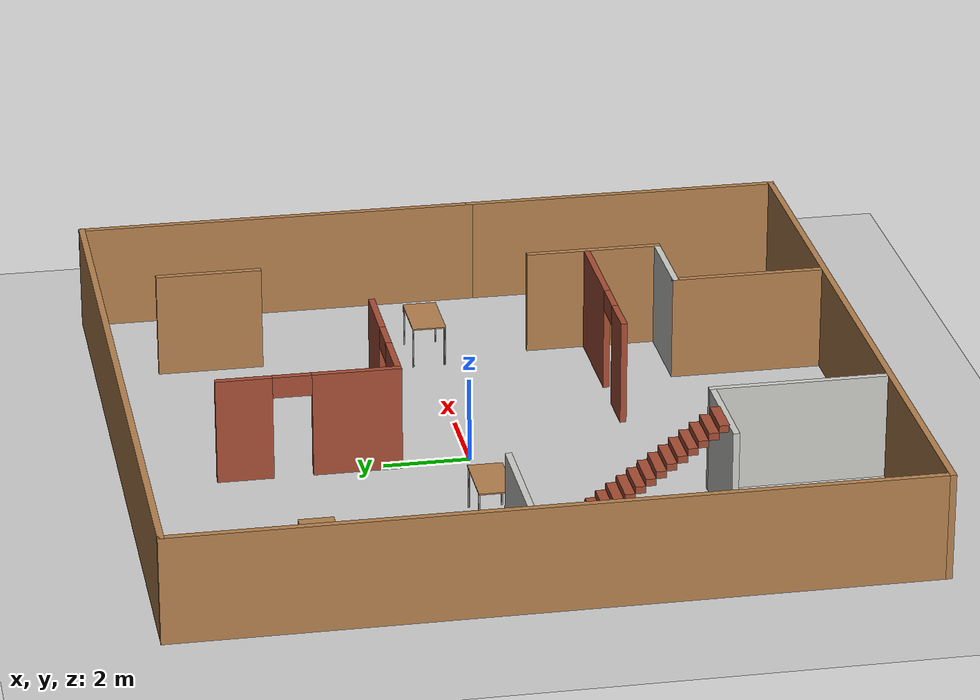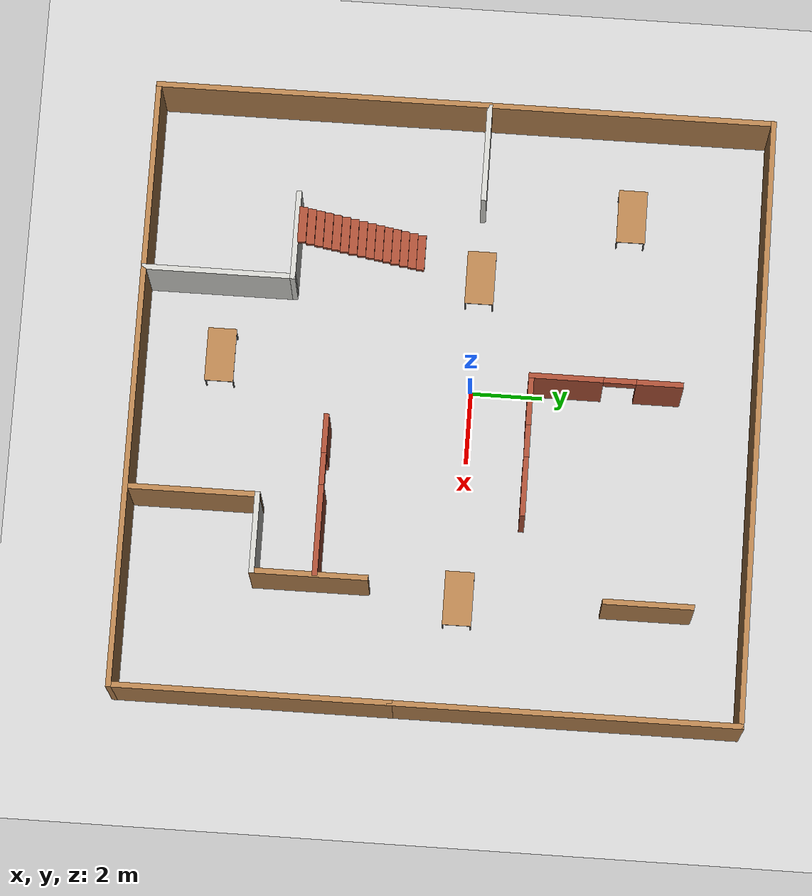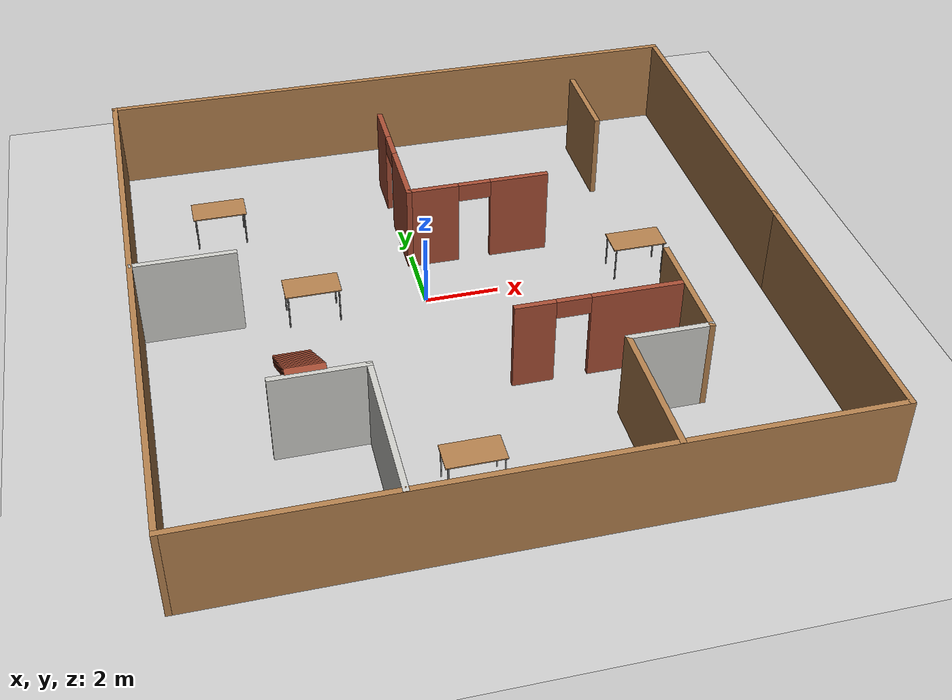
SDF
<sdf version="1.7">
 <world name="default">
  <light name="sun" type="directional">
   <pose>0 0 10 0 -0 0</pose>
   <diffuse>0.8 0.8 0.8 1</diffuse>
   <specular>0.2 0.2 0.2 1</specular>
   <attenuation>
    <range>1000</range>
    <constant>0.9</constant>
    <linear>0.01</linear>
    <quadratic>0.001</quadratic>
   </attenuation>
   <direction>-0.5 0.1 -0.9</direction>
   <spot><inner_angle>0</inner_angle><outer_angle>0</outer_angle><falloff>0</falloff></spot>
  </light>
  <model name="ground_plane">
   <static>1</static>
   <link name="link">
    <collision name="collision">
     <geometry><plane><normal>0 0 1</normal><size>100 100</size></plane></geometry>
     <surface>
      <contact><collide_bitmask>65535</collide_bitmask></contact>
      <friction><ode><mu>100</mu><mu2>50</mu2></ode></friction>
     </surface>
    </collision>
    <visual name="visual">
     <cast_shadows>0</cast_shadows>
     <geometry><plane><normal>0 0 1</normal><size>100 100</size></plane></geometry>
     <material>
      <script><uri>file://media/materials/scripts/gazebo.material</uri><name>Gazebo/Grey</name></script>
     </material>
    </visual>
   </link>
  </model>
  <gravity>0 0 -9.8</gravity>
  <magnetic_field>6e-06 2.3e-05 -4.2e-05</magnetic_field>
  <atmosphere type="adiabatic"/>
  <physics type="ode">
   <max_step_size>0.001</max_step_size>
   <real_time_factor>1</real_time_factor>
   <real_time_update_rate>1000</real_time_update_rate>
  </physics>
  <scene><ambient>0.4 0.4 0.4 1</ambient><background>0.7 0.7 0.7 1</background><shadows>1</shadows></scene>
  <audio><device>default</device></audio>
  <spherical_coordinates>
   <surface_model>EARTH_WGS84</surface_model>
   <latitude_deg>0</latitude_deg>
   <longitude_deg>0</longitude_deg>
   <elevation>0</elevation>
   <heading_deg>0</heading_deg>
  </spherical_coordinates>
  <model name="muneeb_world">
   <pose>0.753472 -0.640306 0 0 -0 0</pose>
   <link name="Stairs_0">
    <visual name="Stairs_0_Visual_0">
     <pose>-4.6773 -1.00271 0.083333 0 -0 0</pose>
     <geometry><box><size>1 0.233333 0.166667</size></box></geometry>
     <material>
      <script><uri>file://media/materials/scripts/gazebo.material</uri><name>Gazebo/Bricks</name></script>
      <ambient>1 1 1 1</ambient>
     </material>
     <meta><layer>0</layer></meta>
    </visual>
    <collision name="Stairs_0_Collision_0">
     <geometry><box><size>1 0.233333 0.166667</size></box></geometry>
     <pose>-4.6773 -1.00271 0.083333 0 -0 0</pose>
    </collision>
    <visual name="Stairs_0_Visual_1">
     <pose>-4.6773 -1.23604 0.25 0 -0 0</pose>
     <geometry><box><size>1 0.233333 0.166667</size></box></geometry>
     <material>
      <script><uri>file://media/materials/scripts/gazebo.material</uri><name>Gazebo/Bricks</name></script>
      <ambient>1 1 1 1</ambient>
     </material>
     <meta><layer>0</layer></meta>
    </visual>
    <collision name="Stairs_0_Collision_1">
     <geometry><box><size>1 0.233333 0.166667</size></box></geometry>
     <pose>-4.6773 -1.23604 0.25 0 -0 0</pose>
    </collision>
    <visual name="Stairs_0_Visual_2">
     <pose>-4.6773 -1.46937 0.416667 0 -0 0</pose>
     <geometry><box><size>1 0.233333 0.166667</size></box></geometry>
     <material>
      <script><uri>file://media/materials/scripts/gazebo.material</uri><name>Gazebo/Bricks</name></script>
      <ambient>1 1 1 1</ambient>
     </material>
     <meta><layer>0</layer></meta>
    </visual>
    <collision name="Stairs_0_Collision_2">
     <geometry><box><size>1 0.233333 0.166667</size></box></geometry>
     <pose>-4.6773 -1.46937 0.416667 0 -0 0</pose>
    </collision>
    <visual name="Stairs_0_Visual_3">
     <pose>-4.6773 -1.70271 0.583333 0 -0 0</pose>
     <geometry><box><size>1 0.233333 0.166667</size></box></geometry>
     <material>
      <script><uri>file://media/materials/scripts/gazebo.material</uri><name>Gazebo/Bricks</name></script>
      <ambient>1 1 1 1</ambient>
     </material>
     <meta><layer>0</layer></meta>
    </visual>
    <collision name="Stairs_0_Collision_3">
     <geometry><box><size>1 0.233333 0.166667</size></box></geometry>
     <pose>-4.6773 -1.70271 0.583333 0 -0 0</pose>
    </collision>
    <visual name="Stairs_0_Visual_4">
     <pose>-4.6773 -1.93604 0.75 0 -0 0</pose>
     <geometry><box><size>1 0.233333 0.166667</size></box></geometry>
     <material>
      <script><uri>file://media/materials/scripts/gazebo.material</uri><name>Gazebo/Bricks</name></script>
      <ambient>1 1 1 1</ambient>
     </material>
     <meta><layer>0</layer></meta>
    </visual>
    <collision name="Stairs_0_Collision_4">
     <geometry><box><size>1 0.233333 0.166667</size></box></geometry>
     <pose>-4.6773 -1.93604 0.75 0 -0 0</pose>
    </collision>
    <visual name="Stairs_0_Visual_5">
     <pose>-4.6773 -2.16937 0.916667 0 -0 0</pose>
     <geometry><box><size>1 0.233333 0.166667</size></box></geometry>
     <material>
      <script><uri>file://media/materials/scripts/gazebo.material</uri><name>Gazebo/Bricks</name></script>
      <ambient>1 1 1 1</ambient>
     </material>
     <meta><layer>0</layer></meta>
    </visual>
    <collision name="Stairs_0_Collision_5">
     <geometry><box><size>1 0.233333 0.166667</size></box></geometry>
     <pose>-4.6773 -2.16937 0.916667 0 -0 0</pose>
    </collision>
    <visual name="Stairs_0_Visual_6">
     <pose>-4.6773 -2.40271 1.08333 0 -0 0</pose>
     <geometry><box><size>1 0.233333 0.166667</size></box></geometry>
     <material>
      <script><uri>file://media/materials/scripts/gazebo.material</uri><name>Gazebo/Bricks</name></script>
      <ambient>1 1 1 1</ambient>
     </material>
     <meta><layer>0</layer></meta>
    </visual>
    <collision name="Stairs_0_Collision_6">
     <geometry><box><size>1 0.233333 0.166667</size></box></geometry>
     <pose>-4.6773 -2.40271 1.08333 0 -0 0</pose>
    </collision>
    <visual name="Stairs_0_Visual_7">
     <pose>-4.6773 -2.63604 1.25 0 -0 0</pose>
     <geometry><box><size>1 0.233333 0.166667</size></box></geometry>
     <material>
      <script><uri>file://media/materials/scripts/gazebo.material</uri><name>Gazebo/Bricks</name></script>
      <ambient>1 1 1 1</ambient>
     </material>
     <meta><layer>0</layer></meta>
    </visual>
    <collision name="Stairs_0_Collision_7">
     <geometry><box><size>1 0.233333 0.166667</size></box></geometry>
     <pose>-4.6773 -2.63604 1.25 0 -0 0</pose>
    </collision>
    <visual name="Stairs_0_Visual_8">
     <pose>-4.6773 -2.86937 1.41667 0 -0 0</pose>
     <geometry><box><size>1 0.233333 0.166667</size></box></geometry>
     <material>
      <script><uri>file://media/materials/scripts/gazebo.material</uri><name>Gazebo/Bricks</name></script>
      <ambient>1 1 1 1</ambient>
     </material>
     <meta><layer>0</layer></meta>
    </visual>
    <collision name="Stairs_0_Collision_8">
     <geometry><box><size>1 0.233333 0.166667</size></box></geometry>
     <pose>-4.6773 -2.86937 1.41667 0 -0 0</pose>
    </collision>
    <visual name="Stairs_0_Visual_9">
     <pose>-4.6773 -3.10271 1.58333 0 -0 0</pose>
     <geometry><box><size>1 0.233333 0.166667</size></box></geometry>
     <material>
      <script><uri>file://media/materials/scripts/gazebo.material</uri><name>Gazebo/Bricks</name></script>
      <ambient>1 1 1 1</ambient>
     </material>
     <meta><layer>0</layer></meta>
    </visual>
    <collision name="Stairs_0_Collision_9">
     <geometry><box><size>1 0.233333 0.166667</size></box></geometry>
     <pose>-4.6773 -3.10271 1.58333 0 -0 0</pose>
    </collision>
    <visual name="Stairs_0_Visual_10">
     <pose>-4.6773 -3.33604 1.75 0 -0 0</pose>
     <geometry><box><size>1 0.233333 0.166667</size></box></geometry>
     <material>
      <script><uri>file://media/materials/scripts/gazebo.material</uri><name>Gazebo/Bricks</name></script>
      <ambient>1 1 1 1</ambient>
     </material>
     <meta><layer>0</layer></meta>
    </visual>
    <collision name="Stairs_0_Collision_10">
     <geometry><box><size>1 0.233333 0.166667</size></box></geometry>
     <pose>-4.6773 -3.33604 1.75 0 -0 0</pose>
    </collision>
    <visual name="Stairs_0_Visual_11">
     <pose>-4.6773 -3.56937 1.91667 0 -0 0</pose>
     <geometry><box><size>1 0.233333 0.166667</size></box></geometry>
     <material>
      <script><uri>file://media/materials/scripts/gazebo.material</uri><name>Gazebo/Bricks</name></script>
      <ambient>1 1 1 1</ambient>
     </material>
     <meta><layer>0</layer></meta>
    </visual>
    <collision name="Stairs_0_Collision_11">
     <geometry><box><size>1 0.233333 0.166667</size></box></geometry>
     <pose>-4.6773 -3.56937 1.91667 0 -0 0</pose>
    </collision>
    <visual name="Stairs_0_Visual_12">
     <pose>-4.6773 -3.80271 2.08333 0 -0 0</pose>
     <geometry><box><size>1 0.233333 0.166667</size></box></geometry>
     <material>
      <script><uri>file://media/materials/scripts/gazebo.material</uri><name>Gazebo/Bricks</name></script>
      <ambient>1 1 1 1</ambient>
     </material>
     <meta><layer>0</layer></meta>
    </visual>
    <collision name="Stairs_0_Collision_12">
     <geometry><box><size>1 0.233333 0.166667</size></box></geometry>
     <pose>-4.6773 -3.80271 2.08333 0 -0 0</pose>
    </collision>
    <visual name="Stairs_0_Visual_13">
     <pose>-4.6773 -4.03604 2.25 0 -0 0</pose>
     <geometry><box><size>1 0.233333 0.166667</size></box></geometry>
     <material>
      <script><uri>file://media/materials/scripts/gazebo.material</uri><name>Gazebo/Bricks</name></script>
      <ambient>1 1 1 1</ambient>
     </material>
     <meta><layer>0</layer></meta>
    </visual>
    <collision name="Stairs_0_Collision_13">
     <geometry><box><size>1 0.233333 0.166667</size></box></geometry>
     <pose>-4.6773 -4.03604 2.25 0 -0 0</pose>
    </collision>
    <visual name="Stairs_0_Visual_14">
     <pose>-4.6773 -4.26937 2.41667 0 -0 0</pose>
     <geometry><box><size>1 0.233333 0.166667</size></box></geometry>
     <material>
      <script><uri>file://media/materials/scripts/gazebo.material</uri><name>Gazebo/Bricks</name></script>
      <ambient>1 1 1 1</ambient>
     </material>
     <meta><layer>0</layer></meta>
    </visual>
    <collision name="Stairs_0_Collision_14">
     <geometry><box><size>1 0.233333 0.166667</size></box></geometry>
     <pose>-4.6773 -4.26937 2.41667 0 -0 0</pose>
    </collision>
   </link>
   <link name="Wall_1">
    <collision name="Wall_1_Collision">
     <geometry><box><size>7.75 0.15 2.5</size></box></geometry>
     <pose>0 0 1.25 0 -0 0</pose>
    </collision>
    <visual name="Wall_1_Visual">
     <pose>0 0 1.25 0 -0 0</pose>
     <geometry><box><size>7.75 0.15 2.5</size></box></geometry>
     <material>
      <script><uri>file://media/materials/scripts/gazebo.material</uri><name>Gazebo/Wood</name></script>
      <ambient>1 1 1 1</ambient>
     </material>
     <meta><layer>0</layer></meta>
    </visual>
    <pose>8.425 -4.75 0 0 -0 -1.5708</pose>
   </link>
   <link name="Wall_10">
    <collision name="Wall_10_Collision">
     <geometry><box><size>2.75 0.15 2.5</size></box></geometry>
     <pose>0 0 1.25 0 -0 0</pose>
    </collision>
    <visual name="Wall_10_Visual">
     <pose>0 0 1.25 0 -0 0</pose>
     <geometry><box><size>2.75 0.15 2.5</size></box></geometry>
     <material>
      <script><uri>file://media/materials/scripts/gazebo.material</uri><name>Gazebo/CeilingTiled</name></script>
      <ambient>1 1 1 1</ambient>
     </material>
     <meta><layer>0</layer></meta>
    </visual>
    <pose>-7.07354 0.66415 0 0 -0 0</pose>
   </link>
   <link name="Wall_12">
    <pose>-0.852813 4.35089 0 0 -0 -1.5708</pose>
    <visual name="Wall_12_Visual_0">
     <pose>-1.47499 0 1.25 0 -0 0</pose>
     <geometry><box><size>1.30001 0.15 2.5</size></box></geometry>
     <material>
      <script><uri>file://media/materials/scripts/gazebo.material</uri><name>Gazebo/Bricks</name></script>
      <ambient>1 1 1 1</ambient>
     </material>
     <meta><layer>0</layer></meta>
    </visual>
    <collision name="Wall_12_Collision_0">
     <geometry><box><size>1.30001 0.15 2.5</size></box></geometry>
     <pose>-1.47499 0 1.25 0 -0 0</pose>
    </collision>
    <visual name="Wall_12_Visual_1">
     <pose>1.10001 0 1.25 0 -0 0</pose>
     <geometry><box><size>2.04999 0.15 2.5</size></box></geometry>
     <material>
      <script><uri>file://media/materials/scripts/gazebo.material</uri><name>Gazebo/Bricks</name></script>
      <ambient>1 1 1 1</ambient>
     </material>
     <meta><layer>0</layer></meta>
    </visual>
    <collision name="Wall_12_Collision_1">
     <geometry><box><size>2.04999 0.15 2.5</size></box></geometry>
     <pose>1.10001 0 1.25 0 -0 0</pose>
    </collision>
    <visual name="Wall_12_Visual_2">
     <pose>-0.374987 0 2.25 0 -0 0</pose>
     <geometry><box><size>0.9 0.15 0.5</size></box></geometry>
     <material>
      <script><uri>file://media/materials/scripts/gazebo.material</uri><name>Gazebo/Bricks</name></script>
      <ambient>1 1 1 1</ambient>
     </material>
     <meta><layer>0</layer></meta>
    </visual>
    <collision name="Wall_12_Collision_2">
     <geometry><box><size>0.9 0.15 0.5</size></box></geometry>
     <pose>-0.374987 0 2.25 0 -0 0</pose>
    </collision>
   </link>
   <link name="Wall_13">
    <pose>1.07219 2.30089 0 0 -0 0</pose>
    <visual name="Wall_13_Visual_0">
     <pose>-1.26922 0 1.25 0 -0 0</pose>
     <geometry><box><size>1.46156 0.15 2.5</size></box></geometry>
     <material>
      <script><uri>file://media/materials/scripts/gazebo.material</uri><name>Gazebo/Bricks</name></script>
      <ambient>1 1 1 1</ambient>
     </material>
     <meta><layer>0</layer></meta>
    </visual>
    <collision name="Wall_13_Collision_0">
     <geometry><box><size>1.46156 0.15 2.5</size></box></geometry>
     <pose>-1.26922 0 1.25 0 -0 0</pose>
    </collision>
    <visual name="Wall_13_Visual_1">
     <pose>1.18078 0 1.25 0 -0 0</pose>
     <geometry><box><size>1.63844 0.15 2.5</size></box></geometry>
     <material>
      <script><uri>file://media/materials/scripts/gazebo.material</uri><name>Gazebo/Bricks</name></script>
      <ambient>1 1 1 1</ambient>
     </material>
     <meta><layer>0</layer></meta>
    </visual>
    <collision name="Wall_13_Collision_1">
     <geometry><box><size>1.63844 0.15 2.5</size></box></geometry>
     <pose>1.18078 0 1.25 0 -0 0</pose>
    </collision>
    <visual name="Wall_13_Visual_2">
     <pose>-0.088444 0 2.25 0 -0 0</pose>
     <geometry><box><size>0.9 0.15 0.5</size></box></geometry>
     <material>
      <script><uri>file://media/materials/scripts/gazebo.material</uri><name>Gazebo/Bricks</name></script>
      <ambient>1 1 1 1</ambient>
     </material>
     <meta><layer>0</layer></meta>
    </visual>
    <collision name="Wall_13_Collision_2">
     <geometry><box><size>0.9 0.15 0.5</size></box></geometry>
     <pose>-0.088444 0 2.25 0 -0 0</pose>
    </collision>
   </link>
   <link name="Wall_15">
    <collision name="Wall_15_Collision">
     <geometry><box><size>3.75 0.15 2.5</size></box></geometry>
     <pose>0 0 1.25 0 -0 0</pose>
    </collision>
    <visual name="Wall_15_Visual">
     <pose>0 0 1.25 0 -0 0</pose>
     <geometry><box><size>3.75 0.15 2.5</size></box></geometry>
     <material>
      <script><uri>file://media/materials/scripts/gazebo.material</uri><name>Gazebo/Wood</name></script>
      <ambient>1 1 1 1</ambient>
     </material>
     <meta><layer>0</layer></meta>
    </visual>
    <pose>2.96002 -6.73562 0 0 -0 1.5708</pose>
   </link>
   <link name="Wall_16">
    <collision name="Wall_16_Collision">
     <geometry><box><size>2.25 0.15 2.5</size></box></geometry>
     <pose>0 0 1.25 0 -0 0</pose>
    </collision>
    <visual name="Wall_16_Visual">
     <pose>0 0 1.25 0 -0 0</pose>
     <geometry><box><size>2.25 0.15 2.5</size></box></geometry>
     <material>
      <script><uri>file://media/materials/scripts/gazebo.material</uri><name>Gazebo/CeilingTiled</name></script>
      <ambient>1 1 1 1</ambient>
     </material>
     <meta><layer>0</layer></meta>
    </visual>
    <pose>4.01002 -4.93562 0 0 -0 0</pose>
   </link>
   <link name="Wall_17">
    <collision name="Wall_17_Collision">
     <geometry><box><size>3.25 0.15 2.5</size></box></geometry>
     <pose>0 0 1.25 0 -0 0</pose>
    </collision>
    <visual name="Wall_17_Visual">
     <pose>0 0 1.25 0 -0 0</pose>
     <geometry><box><size>3.25 0.15 2.5</size></box></geometry>
     <material>
      <script><uri>file://media/materials/scripts/gazebo.material</uri><name>Gazebo/Wood</name></script>
      <ambient>1 1 1 1</ambient>
     </material>
     <meta><layer>0</layer></meta>
    </visual>
    <pose>5.06002 -3.38562 0 0 -0 1.5708</pose>
   </link>
   <link name="Wall_19">
    <pose>2.84885 -3.21864 0 0 -0 3.14159</pose>
    <visual name="Wall_19_Visual_0">
     <pose>-0.991135 0 1.25 0 -0 0</pose>
     <geometry><box><size>2.51773 0.15 2.5</size></box></geometry>
     <material>
      <script><uri>file://media/materials/scripts/gazebo.material</uri><name>Gazebo/Bricks</name></script>
      <ambient>1 1 1 1</ambient>
     </material>
     <meta><layer>0</layer></meta>
    </visual>
    <collision name="Wall_19_Collision_0">
     <geometry><box><size>2.51773 0.15 2.5</size></box></geometry>
     <pose>-0.991135 0 1.25 0 -0 0</pose>
    </collision>
    <visual name="Wall_19_Visual_1">
     <pose>1.70887 0 1.25 0 -0 0</pose>
     <geometry><box><size>1.08227 0.15 2.5</size></box></geometry>
     <material>
      <script><uri>file://media/materials/scripts/gazebo.material</uri><name>Gazebo/Bricks</name></script>
      <ambient>1 1 1 1</ambient>
     </material>
     <meta><layer>0</layer></meta>
    </visual>
    <collision name="Wall_19_Collision_1">
     <geometry><box><size>1.08227 0.15 2.5</size></box></geometry>
     <pose>1.70887 0 1.25 0 -0 0</pose>
    </collision>
    <visual name="Wall_19_Visual_2">
     <pose>0.71773 0 2.25 0 -0 0</pose>
     <geometry><box><size>0.9 0.15 0.5</size></box></geometry>
     <material>
      <script><uri>file://media/materials/scripts/gazebo.material</uri><name>Gazebo/Bricks</name></script>
      <ambient>1 1 1 1</ambient>
     </material>
     <meta><layer>0</layer></meta>
    </visual>
    <collision name="Wall_19_Collision_2">
     <geometry><box><size>0.9 0.15 0.5</size></box></geometry>
     <pose>0.71773 0 2.25 0 -0 0</pose>
    </collision>
   </link>
   <link name="Wall_2">
    <collision name="Wall_2_Collision">
     <geometry><box><size>17 0.15 2.5</size></box></geometry>
     <pose>0 0 1.25 0 -0 0</pose>
    </collision>
    <visual name="Wall_2_Visual">
     <pose>0 0 1.25 0 -0 0</pose>
     <geometry><box><size>17 0.15 2.5</size></box></geometry>
     <material>
      <script><uri>file://media/materials/scripts/gazebo.material</uri><name>Gazebo/Wood</name></script>
      <ambient>1 1 1 1</ambient>
     </material>
     <meta><layer>0</layer></meta>
    </visual>
    <pose>0 -8.55 0 0 -0 3.14159</pose>
   </link>
   <link name="Wall_22">
    <collision name="Wall_22_Collision">
     <geometry><box><size>2.5 0.15 2.5</size></box></geometry>
     <pose>0 0 1.25 0 -0 0</pose>
    </collision>
    <visual name="Wall_22_Visual">
     <pose>0 0 1.25 0 -0 0</pose>
     <geometry><box><size>2.5 0.15 2.5</size></box></geometry>
     <material>
      <script><uri>file://media/materials/scripts/gazebo.material</uri><name>Gazebo/Wood</name></script>
      <ambient>1 1 1 1</ambient>
     </material>
     <meta><layer>0</layer></meta>
    </visual>
    <pose>5.27261 5.86402 0 0 -0 -1.5708</pose>
   </link>
   <link name="Wall_3">
    <collision name="Wall_3_Collision">
     <geometry><box><size>17.25 0.15 2.5</size></box></geometry>
     <pose>0 0 1.25 0 -0 0</pose>
    </collision>
    <visual name="Wall_3_Visual">
     <pose>0 0 1.25 0 -0 0</pose>
     <geometry><box><size>17.25 0.15 2.5</size></box></geometry>
     <material>
      <script><uri>file://media/materials/scripts/gazebo.material</uri><name>Gazebo/Wood</name></script>
      <ambient>1 1 1 1</ambient>
     </material>
     <meta><layer>0</layer></meta>
    </visual>
    <pose>-8.425 0 0 0 -0 1.5708</pose>
   </link>
   <link name="Wall_4">
    <collision name="Wall_4_Collision">
     <geometry><box><size>17 0.15 2.5</size></box></geometry>
     <pose>0 0 1.25 0 -0 0</pose>
    </collision>
    <visual name="Wall_4_Visual">
     <pose>0 0 1.25 0 -0 0</pose>
     <geometry><box><size>17 0.15 2.5</size></box></geometry>
     <material>
      <script><uri>file://media/materials/scripts/gazebo.material</uri><name>Gazebo/Wood</name></script>
      <ambient>1 1 1 1</ambient>
     </material>
     <meta><layer>0</layer></meta>
    </visual>
    <pose>0 8.55 0 0 -0 0</pose>
   </link>
   <link name="Wall_5">
    <collision name="Wall_5_Collision">
     <geometry><box><size>9.65 0.15 2.5</size></box></geometry>
     <pose>0 0 1.25 0 -0 0</pose>
    </collision>
    <visual name="Wall_5_Visual">
     <pose>0 0 1.25 0 -0 0</pose>
     <geometry><box><size>9.65 0.15 2.5</size></box></geometry>
     <material>
      <script><uri>file://media/materials/scripts/gazebo.material</uri><name>Gazebo/Wood</name></script>
      <ambient>1 1 1 1</ambient>
     </material>
     <meta><layer>0</layer></meta>
    </visual>
    <pose>8.425 3.8 0 0 -0 -1.5708</pose>
   </link>
   <link name="Wall_7">
    <collision name="Wall_7_Collision">
     <geometry><box><size>4.25 0.15 2.5</size></box></geometry>
     <pose>0 0 1.25 0 -0 0</pose>
    </collision>
    <visual name="Wall_7_Visual">
     <pose>0 0 1.25 0 -0 0</pose>
     <geometry><box><size>4.25 0.15 2.5</size></box></geometry>
     <material>
      <script><uri>file://media/materials/scripts/gazebo.material</uri><name>Gazebo/CeilingTiled</name></script>
      <ambient>1 1 1 1</ambient>
     </material>
     <meta><layer>0</layer></meta>
    </visual>
    <pose>-3.19648 -6.48562 0 0 -0 1.5708</pose>
   </link>
   <link name="Wall_8">
    <collision name="Wall_8_Collision">
     <geometry><box><size>2.5 0.15 2.5</size></box></geometry>
     <pose>0 0 1.25 0 -0 0</pose>
    </collision>
    <visual name="Wall_8_Visual">
     <pose>0 0 1.25 0 -0 0</pose>
     <geometry><box><size>2.5 0.15 2.5</size></box></geometry>
     <material>
      <script><uri>file://media/materials/scripts/gazebo.material</uri><name>Gazebo/CeilingTiled</name></script>
      <ambient>1 1 1 1</ambient>
     </material>
     <meta><layer>0</layer></meta>
    </visual>
    <pose>-4.37148 -4.43562 0 0 -0 3.14159</pose>
   </link>
   <static>1</static>
  </model>
  <model name="table">
   <static>1</static>
   <link name="link">
    <collision name="surface">
     <pose>0 0 1 0 -0 0</pose>
     <geometry><box><size>1.5 0.8 0.03</size></box></geometry>
     <surface><friction><ode><mu>0.6</mu><mu2>0.6</mu2></ode></friction></surface>
    </collision>
    <visual name="visual1">
     <pose>0 0 1 0 -0 0</pose>
     <geometry><box><size>1.5 0.8 0.03</size></box></geometry>
     <material>
      <script><uri>file://media/materials/scripts/gazebo.material</uri><name>Gazebo/Wood</name></script>
     </material>
    </visual>
    <collision name="front_left_leg">
     <pose>0.68 0.38 0.5 0 -0 0</pose>
     <geometry><cylinder><radius>0.02</radius><length>1</length></cylinder></geometry>
    </collision>
    <visual name="front_left_leg">
     <pose>0.68 0.38 0.5 0 -0 0</pose>
     <geometry><cylinder><radius>0.02</radius><length>1</length></cylinder></geometry>
     <material>
      <script><uri>file://media/materials/scripts/gazebo.material</uri><name>Gazebo/Grey</name></script>
     </material>
    </visual>
    <collision name="front_right_leg">
     <pose>0.68 -0.38 0.5 0 -0 0</pose>
     <geometry><cylinder><radius>0.02</radius><length>1</length></cylinder></geometry>
    </collision>
    <visual name="front_right_leg">
     <pose>0.68 -0.38 0.5 0 -0 0</pose>
     <geometry><cylinder><radius>0.02</radius><length>1</length></cylinder></geometry>
     <material>
      <script><uri>file://media/materials/scripts/gazebo.material</uri><name>Gazebo/Grey</name></script>
     </material>
    </visual>
    <collision name="back_right_leg">
     <pose>-0.68 -0.38 0.5 0 -0 0</pose>
     <geometry><cylinder><radius>0.02</radius><length>1</length></cylinder></geometry>
    </collision>
    <visual name="back_right_leg">
     <pose>-0.68 -0.38 0.5 0 -0 0</pose>
     <geometry><cylinder><radius>0.02</radius><length>1</length></cylinder></geometry>
     <material>
      <script><uri>file://media/materials/scripts/gazebo.material</uri><name>Gazebo/Grey</name></script>
     </material>
    </visual>
    <collision name="back_left_leg">
     <pose>-0.68 0.38 0.5 0 -0 0</pose>
     <geometry><cylinder><radius>0.02</radius><length>1</length></cylinder></geometry>
    </collision>
    <visual name="back_left_leg">
     <pose>-0.68 0.38 0.5 0 -0 0</pose>
     <geometry><cylinder><radius>0.02</radius><length>1</length></cylinder></geometry>
     <material>
      <script><uri>file://media/materials/scripts/gazebo.material</uri><name>Gazebo/Grey</name></script>
     </material>
    </visual>
   </link>
   <pose>-5.13852 4.18358 0 0 -0 0</pose>
  </model>
  <model name="table_0">
   <static>1</static>
   <link name="link">
    <collision name="surface">
     <pose>0 0 1 0 -0 0</pose>
     <geometry><box><size>1.5 0.8 0.03</size></box></geometry>
     <surface><friction><ode><mu>0.6</mu><mu2>0.6</mu2></ode></friction></surface>
    </collision>
    <visual name="visual1">
     <pose>0 0 1 0 -0 0</pose>
     <geometry><box><size>1.5 0.8 0.03</size></box></geometry>
     <material>
      <script><uri>file://media/materials/scripts/gazebo.material</uri><name>Gazebo/Wood</name></script>
     </material>
    </visual>
    <collision name="front_left_leg">
     <pose>0.68 0.38 0.5 0 -0 0</pose>
     <geometry><cylinder><radius>0.02</radius><length>1</length></cylinder></geometry>
    </collision>
    <visual name="front_left_leg">
     <pose>0.68 0.38 0.5 0 -0 0</pose>
     <geometry><cylinder><radius>0.02</radius><length>1</length></cylinder></geometry>
     <material>
      <script><uri>file://media/materials/scripts/gazebo.material</uri><name>Gazebo/Grey</name></script>
     </material>
    </visual>
    <collision name="front_right_leg">
     <pose>0.68 -0.38 0.5 0 -0 0</pose>
     <geometry><cylinder><radius>0.02</radius><length>1</length></cylinder></geometry>
    </collision>
    <visual name="front_right_leg">
     <pose>0.68 -0.38 0.5 0 -0 0</pose>
     <geometry><cylinder><radius>0.02</radius><length>1</length></cylinder></geometry>
     <material>
      <script><uri>file://media/materials/scripts/gazebo.material</uri><name>Gazebo/Grey</name></script>
     </material>
    </visual>
    <collision name="back_right_leg">
     <pose>-0.68 -0.38 0.5 0 -0 0</pose>
     <geometry><cylinder><radius>0.02</radius><length>1</length></cylinder></geometry>
    </collision>
    <visual name="back_right_leg">
     <pose>-0.68 -0.38 0.5 0 -0 0</pose>
     <geometry><cylinder><radius>0.02</radius><length>1</length></cylinder></geometry>
     <material>
      <script><uri>file://media/materials/scripts/gazebo.material</uri><name>Gazebo/Grey</name></script>
     </material>
    </visual>
    <collision name="back_left_leg">
     <pose>-0.68 0.38 0.5 0 -0 0</pose>
     <geometry><cylinder><radius>0.02</radius><length>1</length></cylinder></geometry>
    </collision>
    <visual name="back_left_leg">
     <pose>-0.68 0.38 0.5 0 -0 0</pose>
     <geometry><cylinder><radius>0.02</radius><length>1</length></cylinder></geometry>
     <material>
      <script><uri>file://media/materials/scripts/gazebo.material</uri><name>Gazebo/Grey</name></script>
     </material>
    </visual>
   </link>
   <pose>-0.429736 -6.97971 0 0 -0 0</pose>
  </model>
  <model name="table_1">
   <static>1</static>
   <link name="link">
    <collision name="surface">
     <pose>0 0 1 0 -0 0</pose>
     <geometry><box><size>1.5 0.8 0.03</size></box></geometry>
     <surface><friction><ode><mu>0.6</mu><mu2>0.6</mu2></ode></friction></surface>
    </collision>
    <visual name="visual1">
     <pose>0 0 1 0 -0 0</pose>
     <geometry><box><size>1.5 0.8 0.03</size></box></geometry>
     <material>
      <script><uri>file://media/materials/scripts/gazebo.material</uri><name>Gazebo/Wood</name></script>
     </material>
    </visual>
    <collision name="front_left_leg">
     <pose>0.68 0.38 0.5 0 -0 0</pose>
     <geometry><cylinder><radius>0.02</radius><length>1</length></cylinder></geometry>
    </collision>
    <visual name="front_left_leg">
     <pose>0.68 0.38 0.5 0 -0 0</pose>
     <geometry><cylinder><radius>0.02</radius><length>1</length></cylinder></geometry>
     <material>
      <script><uri>file://media/materials/scripts/gazebo.material</uri><name>Gazebo/Grey</name></script>
     </material>
    </visual>
    <collision name="front_right_leg">
     <pose>0.68 -0.38 0.5 0 -0 0</pose>
     <geometry><cylinder><radius>0.02</radius><length>1</length></cylinder></geometry>
    </collision>
    <visual name="front_right_leg">
     <pose>0.68 -0.38 0.5 0 -0 0</pose>
     <geometry><cylinder><radius>0.02</radius><length>1</length></cylinder></geometry>
     <material>
      <script><uri>file://media/materials/scripts/gazebo.material</uri><name>Gazebo/Grey</name></script>
     </material>
    </visual>
    <collision name="back_right_leg">
     <pose>-0.68 -0.38 0.5 0 -0 0</pose>
     <geometry><cylinder><radius>0.02</radius><length>1</length></cylinder></geometry>
    </collision>
    <visual name="back_right_leg">
     <pose>-0.68 -0.38 0.5 0 -0 0</pose>
     <geometry><cylinder><radius>0.02</radius><length>1</length></cylinder></geometry>
     <material>
      <script><uri>file://media/materials/scripts/gazebo.material</uri><name>Gazebo/Grey</name></script>
     </material>
    </visual>
    <collision name="back_left_leg">
     <pose>-0.68 0.38 0.5 0 -0 0</pose>
     <geometry><cylinder><radius>0.02</radius><length>1</length></cylinder></geometry>
    </collision>
    <visual name="back_left_leg">
     <pose>-0.68 0.38 0.5 0 -0 0</pose>
     <geometry><cylinder><radius>0.02</radius><length>1</length></cylinder></geometry>
     <material>
      <script><uri>file://media/materials/scripts/gazebo.material</uri><name>Gazebo/Grey</name></script>
     </material>
    </visual>
   </link>
   <pose>5.9673 0.062292 0 0 -0 0</pose>
  </model>
  <model name="table_2">
   <static>1</static>
   <link name="link">
    <collision name="surface">
     <pose>0 0 1 0 -0 0</pose>
     <geometry><box><size>1.5 0.8 0.03</size></box></geometry>
     <surface><friction><ode><mu>0.6</mu><mu2>0.6</mu2></ode></friction></surface>
    </collision>
    <visual name="visual1">
     <pose>0 0 1 0 -0 0</pose>
     <geometry><box><size>1.5 0.8 0.03</size></box></geometry>
     <material>
      <script><uri>file://media/materials/scripts/gazebo.material</uri><name>Gazebo/Wood</name></script>
     </material>
    </visual>
    <collision name="front_left_leg">
     <pose>0.68 0.38 0.5 0 -0 0</pose>
     <geometry><cylinder><radius>0.02</radius><length>1</length></cylinder></geometry>
    </collision>
    <visual name="front_left_leg">
     <pose>0.68 0.38 0.5 0 -0 0</pose>
     <geometry><cylinder><radius>0.02</radius><length>1</length></cylinder></geometry>
     <material>
      <script><uri>file://media/materials/scripts/gazebo.material</uri><name>Gazebo/Grey</name></script>
     </material>
    </visual>
    <collision name="front_right_leg">
     <pose>0.68 -0.38 0.5 0 -0 0</pose>
     <geometry><cylinder><radius>0.02</radius><length>1</length></cylinder></geometry>
    </collision>
    <visual name="front_right_leg">
     <pose>0.68 -0.38 0.5 0 -0 0</pose>
     <geometry><cylinder><radius>0.02</radius><length>1</length></cylinder></geometry>
     <material>
      <script><uri>file://media/materials/scripts/gazebo.material</uri><name>Gazebo/Grey</name></script>
     </material>
    </visual>
    <collision name="back_right_leg">
     <pose>-0.68 -0.38 0.5 0 -0 0</pose>
     <geometry><cylinder><radius>0.02</radius><length>1</length></cylinder></geometry>
    </collision>
    <visual name="back_right_leg">
     <pose>-0.68 -0.38 0.5 0 -0 0</pose>
     <geometry><cylinder><radius>0.02</radius><length>1</length></cylinder></geometry>
     <material>
      <script><uri>file://media/materials/scripts/gazebo.material</uri><name>Gazebo/Grey</name></script>
     </material>
    </visual>
    <collision name="back_left_leg">
     <pose>-0.68 0.38 0.5 0 -0 0</pose>
     <geometry><cylinder><radius>0.02</radius><length>1</length></cylinder></geometry>
    </collision>
    <visual name="back_left_leg">
     <pose>-0.68 0.38 0.5 0 -0 0</pose>
     <geometry><cylinder><radius>0.02</radius><length>1</length></cylinder></geometry>
     <material>
      <script><uri>file://media/materials/scripts/gazebo.material</uri><name>Gazebo/Grey</name></script>
     </material>
    </visual>
   </link>
   <pose>-3.10333 0.075787 0 0 -0 0</pose>
  </model>
 </world>
</sdf>
